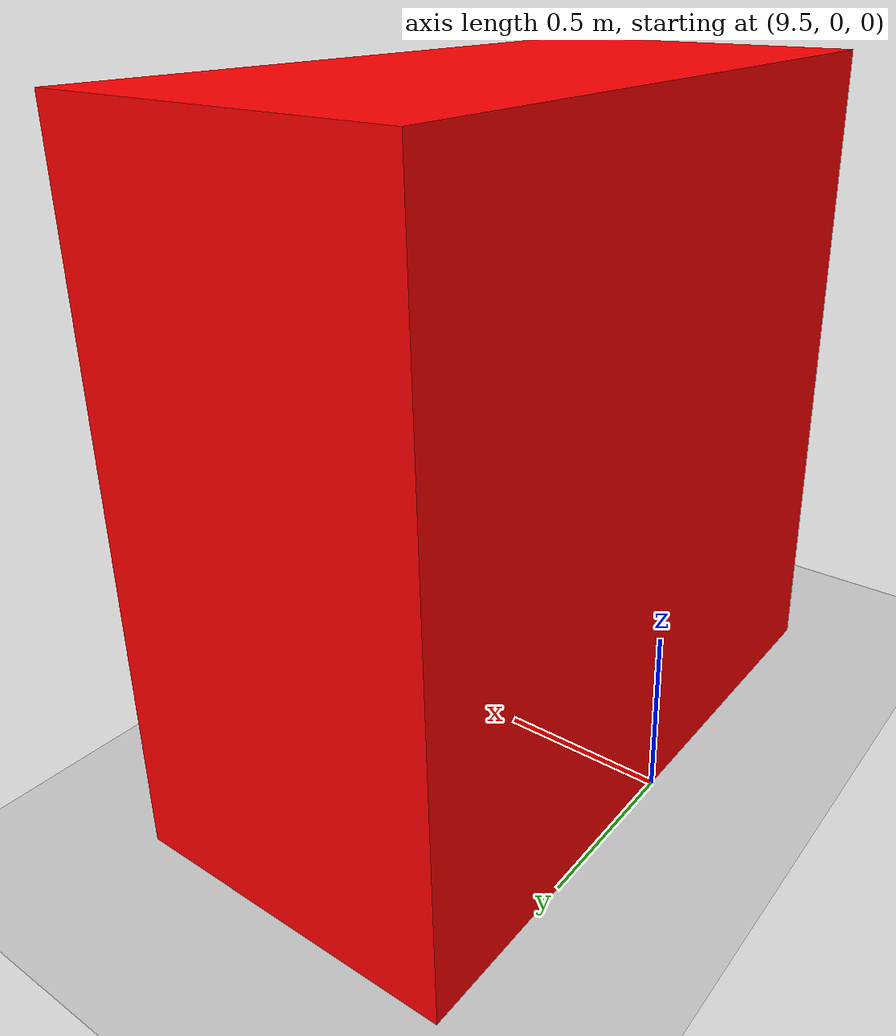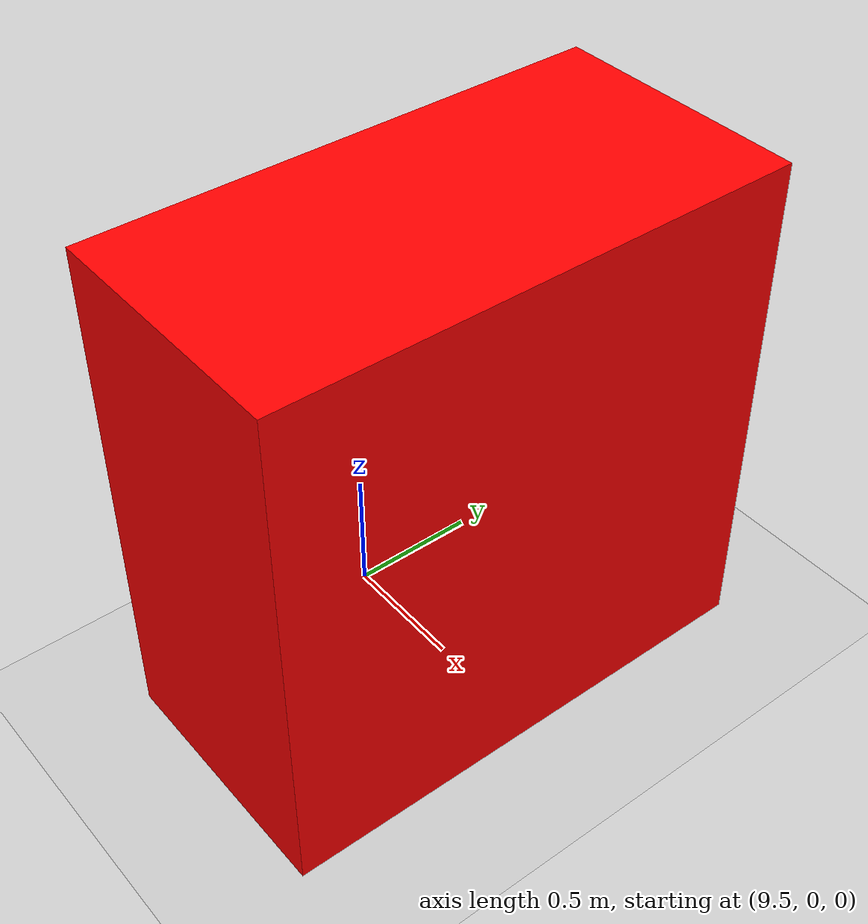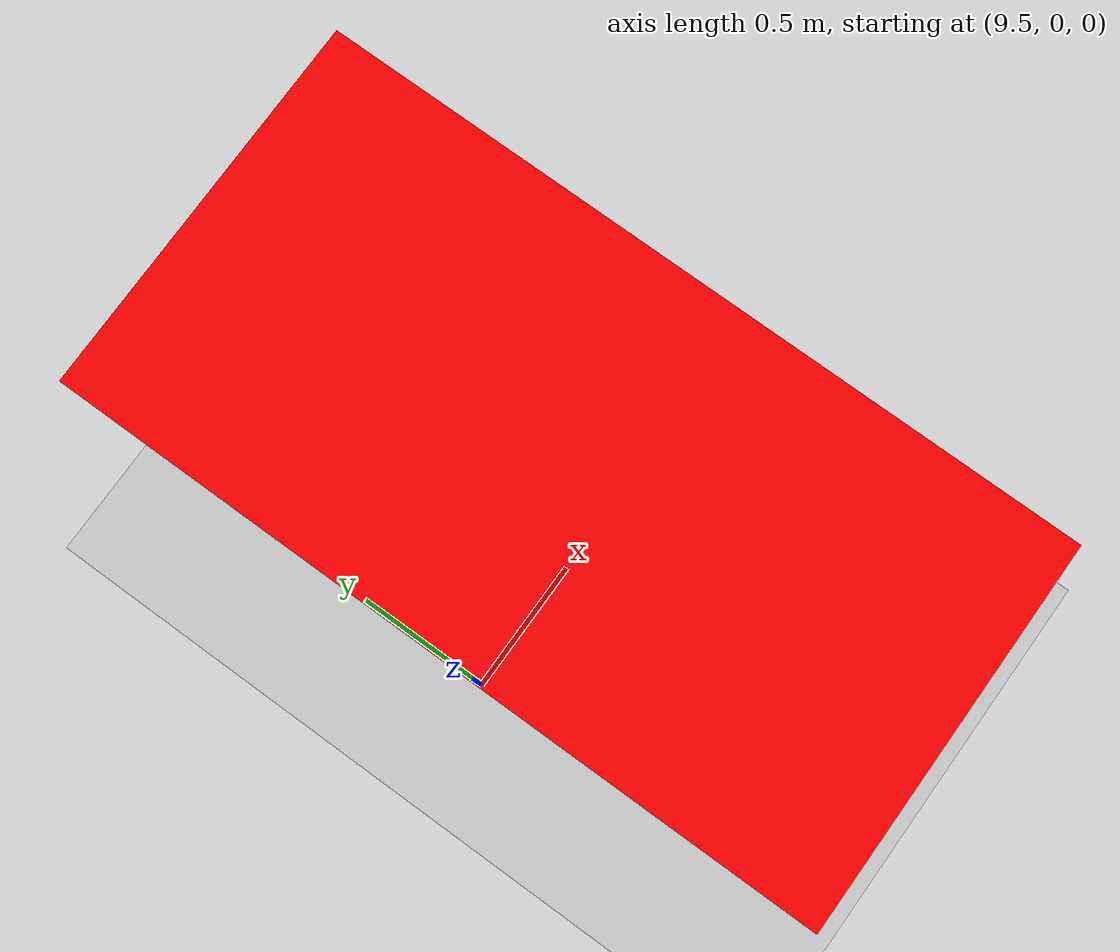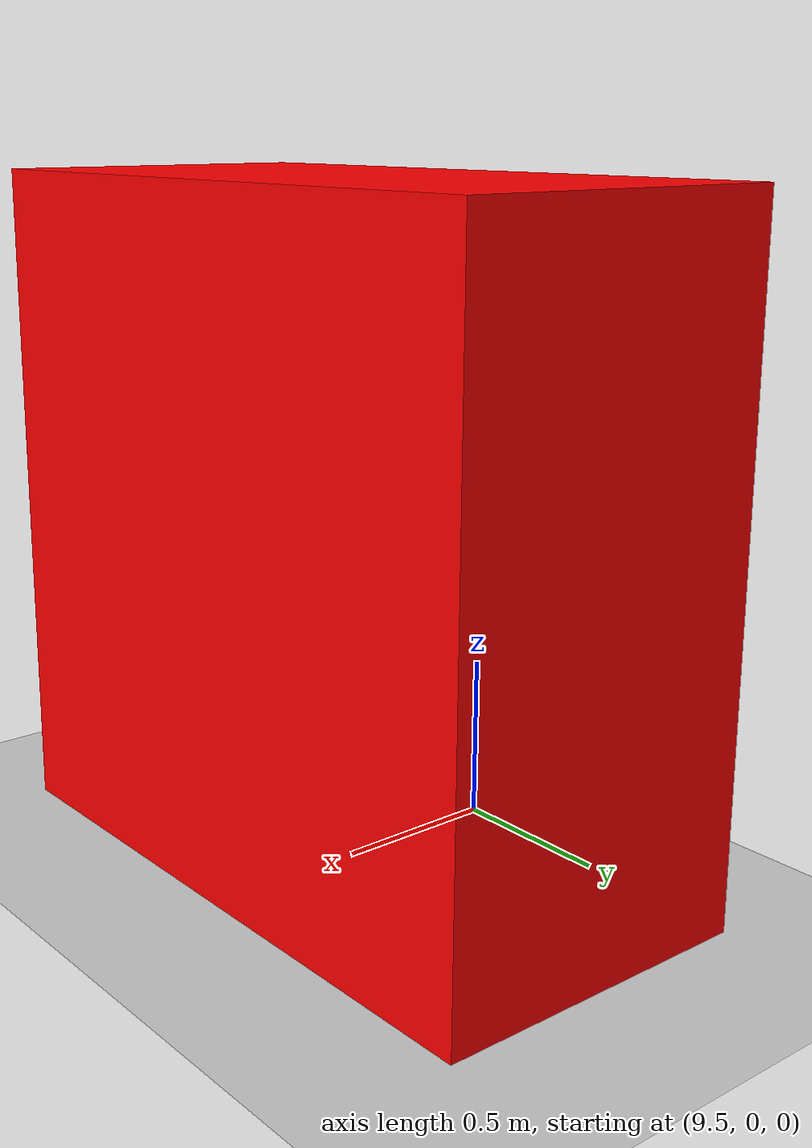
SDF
<?xml version="1.0"?>
<sdf version="1.6">
  <world name="gimbal_range_demo">
    <include><uri>model://sun</uri></include>
    <include><uri>model://ground_plane</uri></include>
    <spherical_coordinates>
      <surface_model>EARTH_WGS84</surface_model>
      <latitude_deg>47.397743</latitude_deg>
      <longitude_deg>8.545594</longitude_deg>
      <elevation>0.0</elevation>
      <heading_deg>0</heading_deg>
    </spherical_coordinates>
    <physics type="ode">
      <!-- The launch file spawns the test-only x500 sensor fixture. -->
      <gravity>0 0 0</gravity>
      <max_step_size>0.002</max_step_size>
      <real_time_update_rate>500</real_time_update_rate>
    </physics>

    <model name="red_target">
      <static>true</static>
      <pose>10 0 1 0 0 0</pose>
      <link name="target">
        <collision name="collision">
          <geometry><box><size>1 2 2</size></box></geometry>
        </collision>
        <visual name="visual">
          <geometry><box><size>1 2 2</size></box></geometry>
          <material><ambient>1 0 0 1</ambient><diffuse>1 0 0 1</diffuse></material>
        </visual>
      </link>
    </model>
  </world>
</sdf>
